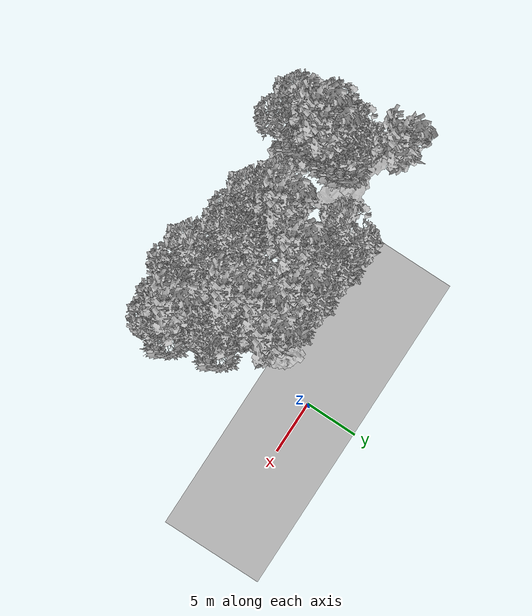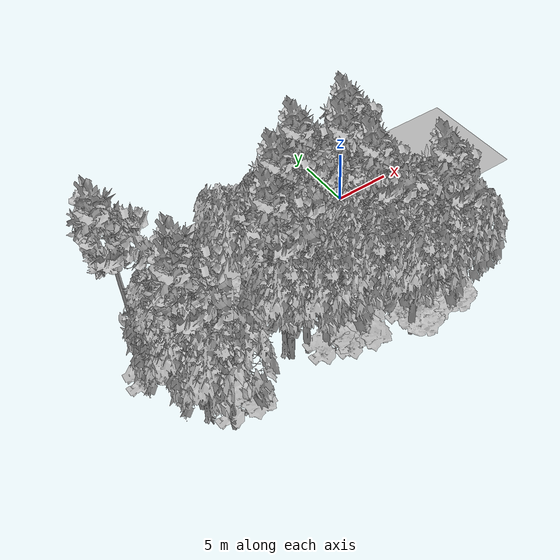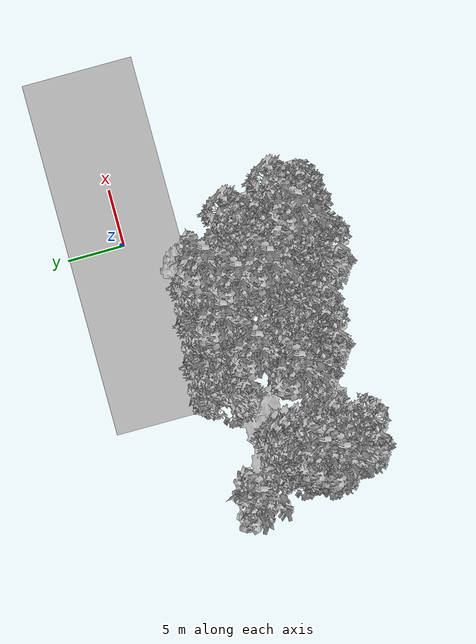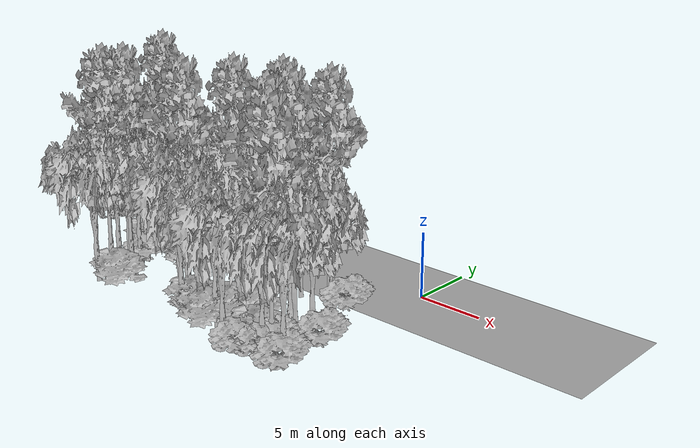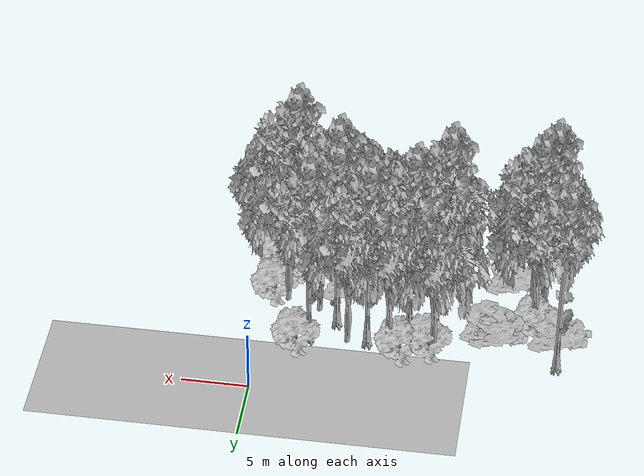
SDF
<sdf version="1.7">
 <world name="default">
  <model name="ground_plane">
   <static>1</static>
   <link name="link">
    <collision name="collision">
     <pose>-50 0 0 0 -0 0</pose>
     <geometry><plane><normal>0 0 1</normal><size>100 100</size></plane></geometry>
     <surface><contact><ode><min_depth>0.01</min_depth><max_vel>0</max_vel></ode></contact></surface>
    </collision>
    <visual name="grass">
     <cast_shadows>0</cast_shadows>
     <geometry>
      <mesh>
       <scale>0.5814285714285714 0.18142857142857144 0.1</scale>
       <uri>file://grass_plane/meshes/grass_plane.dae</uri>
      </mesh>
     </geometry>
    </visual>
   </link>
  </model>
  <model name="Tree 12">
   <static>1</static>
   <pose>-1.50159747943853 -9.879959348353642 0 1.57079 -0 0</pose>
   <link name="link">
    <collision name="collision">
     <geometry><mesh><scale>3.5 5 3.5</scale><uri>model://tree_2/meshes/tree_2.obj</uri></mesh></geometry>
    </collision>
    <visual name="visual">
     <geometry><mesh><scale>3.5 5 3.5</scale><uri>model://tree_2/meshes/tree_2.obj</uri></mesh></geometry>
    </visual>
   </link>
  </model>
  <model name="Tree 27">
   <static>1</static>
   <pose>-19.66256483486999 -14.122985390510822 0 1.57079 -0 0</pose>
   <link name="link">
    <collision name="collision">
     <geometry><mesh><scale>3.5 5 3.5</scale><uri>model://tree_2/meshes/tree_2.obj</uri></mesh></geometry>
    </collision>
    <visual name="visual">
     <geometry><mesh><scale>3.5 5 3.5</scale><uri>model://tree_2/meshes/tree_2.obj</uri></mesh></geometry>
    </visual>
   </link>
  </model>
  <model name="Tree 35">
   <static>1</static>
   <pose>-20.503865957009506 -12.225678853466139 0 1.57079 -0 0</pose>
   <link name="link">
    <collision name="collision">
     <geometry><mesh><scale>3.5 5 3.5</scale><uri>model://tree_9/meshes/tree_9.obj</uri></mesh></geometry>
    </collision>
    <visual name="visual">
     <geometry><mesh><scale>3.5 5 3.5</scale><uri>model://tree_9/meshes/tree_9.obj</uri></mesh></geometry>
    </visual>
   </link>
  </model>
  <model name="Tree 57">
   <static>1</static>
   <pose>-2.8117138104480617 -5.010645561518773 0 1.57079 -0 0</pose>
   <link name="link">
    <collision name="collision">
     <geometry><mesh><scale>4 2.5 4</scale><uri>model://tree_1/meshes/tree_1.obj</uri></mesh></geometry>
    </collision>
    <visual name="visual">
     <geometry><mesh><scale>4 2.5 4</scale><uri>model://tree_1/meshes/tree_1.obj</uri></mesh></geometry>
    </visual>
   </link>
  </model>
  <model name="Tree 61">
   <static>1</static>
   <pose>-12.566647180305935 -5.742913368934948 0 1.57079 -0 0</pose>
   <link name="link">
    <collision name="collision">
     <geometry><mesh><scale>4 2.5 4</scale><uri>model://tree_1/meshes/tree_1.obj</uri></mesh></geometry>
    </collision>
    <visual name="visual">
     <geometry><mesh><scale>4 2.5 4</scale><uri>model://tree_1/meshes/tree_1.obj</uri></mesh></geometry>
    </visual>
   </link>
  </model>
  <model name="Tree 69">
   <static>1</static>
   <pose>-3.4126143271416467 -13.39953610645943 0 1.57079 -0 0</pose>
   <link name="link">
    <collision name="collision">
     <geometry><mesh><scale>3 2 3</scale><uri>model://tree_3/meshes/tree_3.obj</uri></mesh></geometry>
    </collision>
    <visual name="visual">
     <geometry><mesh><scale>3 2 3</scale><uri>model://tree_3/meshes/tree_3.obj</uri></mesh></geometry>
    </visual>
   </link>
  </model>
  <model name="Tree 70">
   <static>1</static>
   <pose>-11.06358419430834 -13.08388687965585 0 1.57079 -0 0</pose>
   <link name="link">
    <collision name="collision">
     <geometry><mesh><scale>3.5 5 3.5</scale><uri>model://tree_2/meshes/tree_2.obj</uri></mesh></geometry>
    </collision>
    <visual name="visual">
     <geometry><mesh><scale>3.5 5 3.5</scale><uri>model://tree_2/meshes/tree_2.obj</uri></mesh></geometry>
    </visual>
   </link>
  </model>
  <model name="Tree 75">
   <static>1</static>
   <pose>-11.915114065406868 -11.828859717489891 0 1.57079 -0 0</pose>
   <link name="link">
    <collision name="collision">
     <geometry><mesh><scale>3.5 5 3.5</scale><uri>model://tree_2/meshes/tree_2.obj</uri></mesh></geometry>
    </collision>
    <visual name="visual">
     <geometry><mesh><scale>3.5 5 3.5</scale><uri>model://tree_2/meshes/tree_2.obj</uri></mesh></geometry>
    </visual>
   </link>
  </model>
  <model name="Tree 86">
   <static>1</static>
   <pose>-4.637871227763824 -14.968036942179307 0 1.57079 -0 0</pose>
   <link name="link">
    <collision name="collision">
     <geometry><mesh><scale>3.5 5 3.5</scale><uri>model://tree_2/meshes/tree_2.obj</uri></mesh></geometry>
    </collision>
    <visual name="visual">
     <geometry><mesh><scale>3.5 5 3.5</scale><uri>model://tree_2/meshes/tree_2.obj</uri></mesh></geometry>
    </visual>
   </link>
  </model>
  <model name="Tree 87">
   <static>1</static>
   <pose>-21.986639834345766 -7.7219411432305005 0 1.57079 -0 0</pose>
   <link name="link">
    <collision name="collision">
     <geometry><mesh><scale>3 2 3</scale><uri>model://tree_3/meshes/tree_3.obj</uri></mesh></geometry>
    </collision>
    <visual name="visual">
     <geometry><mesh><scale>3 2 3</scale><uri>model://tree_3/meshes/tree_3.obj</uri></mesh></geometry>
    </visual>
   </link>
  </model>
  <model name="Tree 94">
   <static>1</static>
   <pose>-16.89311117780248 -8.04204011389494 0 1.57079 -0 0</pose>
   <link name="link">
    <collision name="collision">
     <geometry><mesh><scale>3 2 3</scale><uri>model://tree_3/meshes/tree_3.obj</uri></mesh></geometry>
    </collision>
    <visual name="visual">
     <geometry><mesh><scale>3 2 3</scale><uri>model://tree_3/meshes/tree_3.obj</uri></mesh></geometry>
    </visual>
   </link>
  </model>
  <model name="Tree 95">
   <static>1</static>
   <pose>-1.9947394591807566 -13.122786531332514 0 1.57079 -0 0</pose>
   <link name="link">
    <collision name="collision">
     <geometry><mesh><scale>4 2.5 4</scale><uri>model://tree_1/meshes/tree_1.obj</uri></mesh></geometry>
    </collision>
    <visual name="visual">
     <geometry><mesh><scale>4 2.5 4</scale><uri>model://tree_1/meshes/tree_1.obj</uri></mesh></geometry>
    </visual>
   </link>
  </model>
  <model name="Tree 96">
   <static>1</static>
   <pose>-7.351783274770277 -13.20518879036336 0 1.57079 -0 0</pose>
   <link name="link">
    <collision name="collision">
     <geometry><mesh><scale>3.5 5 3.5</scale><uri>model://tree_2/meshes/tree_2.obj</uri></mesh></geometry>
    </collision>
    <visual name="visual">
     <geometry><mesh><scale>3.5 5 3.5</scale><uri>model://tree_2/meshes/tree_2.obj</uri></mesh></geometry>
    </visual>
   </link>
  </model>
  <model name="Tree 97">
   <static>1</static>
   <pose>-2.178149891349996 -13.957123581580287 0 1.57079 -0 0</pose>
   <link name="link">
    <collision name="collision">
     <geometry><mesh><scale>4 2.5 4</scale><uri>model://tree_1/meshes/tree_1.obj</uri></mesh></geometry>
    </collision>
    <visual name="visual">
     <geometry><mesh><scale>4 2.5 4</scale><uri>model://tree_1/meshes/tree_1.obj</uri></mesh></geometry>
    </visual>
   </link>
  </model>
  <model name="Tree 120">
   <static>1</static>
   <pose>-0.1393917935306206 -14.191559642324721 0 1.57079 -0 0</pose>
   <link name="link">
    <collision name="collision">
     <geometry><mesh><scale>4 2.5 4</scale><uri>model://tree_1/meshes/tree_1.obj</uri></mesh></geometry>
    </collision>
    <visual name="visual">
     <geometry><mesh><scale>4 2.5 4</scale><uri>model://tree_1/meshes/tree_1.obj</uri></mesh></geometry>
    </visual>
   </link>
  </model>
  <model name="Tree 127">
   <static>1</static>
   <pose>-18.29765632771013 -13.610339030215128 0 1.57079 -0 0</pose>
   <link name="link">
    <collision name="collision">
     <geometry><mesh><scale>3 2 3</scale><uri>model://tree_3/meshes/tree_3.obj</uri></mesh></geometry>
    </collision>
    <visual name="visual">
     <geometry><mesh><scale>3 2 3</scale><uri>model://tree_3/meshes/tree_3.obj</uri></mesh></geometry>
    </visual>
   </link>
  </model>
  <model name="Tree 134">
   <static>1</static>
   <pose>-6.0862142308994365 -11.12225132108448 0 1.57079 -0 0</pose>
   <link name="link">
    <collision name="collision">
     <geometry><mesh><scale>3 2 3</scale><uri>model://tree_3/meshes/tree_3.obj</uri></mesh></geometry>
    </collision>
    <visual name="visual">
     <geometry><mesh><scale>3 2 3</scale><uri>model://tree_3/meshes/tree_3.obj</uri></mesh></geometry>
    </visual>
   </link>
  </model>
  <model name="Tree 152">
   <static>1</static>
   <pose>-4.90606151258438 -10.536182815350084 0 1.57079 -0 0</pose>
   <link name="link">
    <collision name="collision">
     <geometry><mesh><scale>3.5 5 3.5</scale><uri>model://tree_9/meshes/tree_9.obj</uri></mesh></geometry>
    </collision>
    <visual name="visual">
     <geometry><mesh><scale>3.5 5 3.5</scale><uri>model://tree_9/meshes/tree_9.obj</uri></mesh></geometry>
    </visual>
   </link>
  </model>
  <model name="Tree 186">
   <static>1</static>
   <pose>-13.098190071849764 -11.580761951727256 0 1.57079 -0 0</pose>
   <link name="link">
    <collision name="collision">
     <geometry><mesh><scale>3.5 5 3.5</scale><uri>model://tree_2/meshes/tree_2.obj</uri></mesh></geometry>
    </collision>
    <visual name="visual">
     <geometry><mesh><scale>3.5 5 3.5</scale><uri>model://tree_2/meshes/tree_2.obj</uri></mesh></geometry>
    </visual>
   </link>
  </model>
  <model name="Tree 204">
   <static>1</static>
   <pose>-10.17088853305949 -13.045176247442093 0 1.57079 -0 0</pose>
   <link name="link">
    <collision name="collision">
     <geometry><mesh><scale>3 2 3</scale><uri>model://tree_3/meshes/tree_3.obj</uri></mesh></geometry>
    </collision>
    <visual name="visual">
     <geometry><mesh><scale>3 2 3</scale><uri>model://tree_3/meshes/tree_3.obj</uri></mesh></geometry>
    </visual>
   </link>
  </model>
  <model name="Tree 206">
   <static>1</static>
   <pose>-13.08047887840646 -10.777039910648089 0 1.57079 -0 0</pose>
   <link name="link">
    <collision name="collision">
     <geometry><mesh><scale>3.5 5 3.5</scale><uri>model://tree_9/meshes/tree_9.obj</uri></mesh></geometry>
    </collision>
    <visual name="visual">
     <geometry><mesh><scale>3.5 5 3.5</scale><uri>model://tree_9/meshes/tree_9.obj</uri></mesh></geometry>
    </visual>
   </link>
  </model>
  <model name="Tree 244">
   <static>1</static>
   <pose>-0.08105656148013907 -13.979215926077167 0 1.57079 -0 0</pose>
   <link name="link">
    <collision name="collision">
     <geometry><mesh><scale>3.5 5 3.5</scale><uri>model://tree_2/meshes/tree_2.obj</uri></mesh></geometry>
    </collision>
    <visual name="visual">
     <geometry><mesh><scale>3.5 5 3.5</scale><uri>model://tree_2/meshes/tree_2.obj</uri></mesh></geometry>
    </visual>
   </link>
  </model>
  <model name="Tree 279">
   <static>1</static>
   <pose>-9.619958603923543 -5.63423909653147 0 1.57079 -0 0</pose>
   <link name="link">
    <collision name="collision">
     <geometry><mesh><scale>3.5 5 3.5</scale><uri>model://tree_2/meshes/tree_2.obj</uri></mesh></geometry>
    </collision>
    <visual name="visual">
     <geometry><mesh><scale>3.5 5 3.5</scale><uri>model://tree_2/meshes/tree_2.obj</uri></mesh></geometry>
    </visual>
   </link>
  </model>
  <model name="Tree 283">
   <static>1</static>
   <pose>-5.984023032711747 -11.283458625506801 0 1.57079 -0 0</pose>
   <link name="link">
    <collision name="collision">
     <geometry><mesh><scale>3.5 5 3.5</scale><uri>model://tree_2/meshes/tree_2.obj</uri></mesh></geometry>
    </collision>
    <visual name="visual">
     <geometry><mesh><scale>3.5 5 3.5</scale><uri>model://tree_2/meshes/tree_2.obj</uri></mesh></geometry>
    </visual>
   </link>
  </model>
  <model name="Tree 294">
   <static>1</static>
   <pose>-1.739461138106421 -14.211430007460953 0 1.57079 -0 0</pose>
   <link name="link">
    <collision name="collision">
     <geometry><mesh><scale>3.5 5 3.5</scale><uri>model://tree_2/meshes/tree_2.obj</uri></mesh></geometry>
    </collision>
    <visual name="visual">
     <geometry><mesh><scale>3.5 5 3.5</scale><uri>model://tree_2/meshes/tree_2.obj</uri></mesh></geometry>
    </visual>
   </link>
  </model>
  <model name="Tree 301">
   <static>1</static>
   <pose>-8.309172600886157 -13.806670508051516 0 1.57079 -0 0</pose>
   <link name="link">
    <collision name="collision">
     <geometry><mesh><scale>3 2 3</scale><uri>model://tree_3/meshes/tree_3.obj</uri></mesh></geometry>
    </collision>
    <visual name="visual">
     <geometry><mesh><scale>3 2 3</scale><uri>model://tree_3/meshes/tree_3.obj</uri></mesh></geometry>
    </visual>
   </link>
  </model>
  <model name="Tree 305">
   <static>1</static>
   <pose>-4.008792925837149 -9.02853503323201 0 1.57079 -0 0</pose>
   <link name="link">
    <collision name="collision">
     <geometry><mesh><scale>3.5 5 3.5</scale><uri>model://tree_2/meshes/tree_2.obj</uri></mesh></geometry>
    </collision>
    <visual name="visual">
     <geometry><mesh><scale>3.5 5 3.5</scale><uri>model://tree_2/meshes/tree_2.obj</uri></mesh></geometry>
    </visual>
   </link>
  </model>
  <model name="Tree 331">
   <static>1</static>
   <pose>-20.08602750150642 -9.23020497079876 0 1.57079 -0 0</pose>
   <link name="link">
    <collision name="collision">
     <geometry><mesh><scale>3.5 5 3.5</scale><uri>model://tree_2/meshes/tree_2.obj</uri></mesh></geometry>
    </collision>
    <visual name="visual">
     <geometry><mesh><scale>3.5 5 3.5</scale><uri>model://tree_2/meshes/tree_2.obj</uri></mesh></geometry>
    </visual>
   </link>
  </model>
  <model name="Tree 343">
   <static>1</static>
   <pose>-22.036750614932238 -5.4020226238130675 0 1.57079 -0 0</pose>
   <link name="link">
    <collision name="collision">
     <geometry><mesh><scale>3.5 5 3.5</scale><uri>model://tree_9/meshes/tree_9.obj</uri></mesh></geometry>
    </collision>
    <visual name="visual">
     <geometry><mesh><scale>3.5 5 3.5</scale><uri>model://tree_9/meshes/tree_9.obj</uri></mesh></geometry>
    </visual>
   </link>
  </model>
  <model name="Tree 357">
   <static>1</static>
   <pose>-17.612206447340572 -7.515040399202465 0 1.57079 -0 0</pose>
   <link name="link">
    <collision name="collision">
     <geometry><mesh><scale>3 2 3</scale><uri>model://tree_3/meshes/tree_3.obj</uri></mesh></geometry>
    </collision>
    <visual name="visual">
     <geometry><mesh><scale>3 2 3</scale><uri>model://tree_3/meshes/tree_3.obj</uri></mesh></geometry>
    </visual>
   </link>
  </model>
  <model name="Tree 361">
   <static>1</static>
   <pose>-6.535815647415788 -5.890120144991712 0 1.57079 -0 0</pose>
   <link name="link">
    <collision name="collision">
     <geometry><mesh><scale>3.5 5 3.5</scale><uri>model://tree_2/meshes/tree_2.obj</uri></mesh></geometry>
    </collision>
    <visual name="visual">
     <geometry><mesh><scale>3.5 5 3.5</scale><uri>model://tree_2/meshes/tree_2.obj</uri></mesh></geometry>
    </visual>
   </link>
  </model>
  <model name="Tree 366">
   <static>1</static>
   <pose>-20.659146289398567 -11.419535726430805 0 1.57079 -0 0</pose>
   <link name="link">
    <collision name="collision">
     <geometry><mesh><scale>3.5 5 3.5</scale><uri>model://tree_2/meshes/tree_2.obj</uri></mesh></geometry>
    </collision>
    <visual name="visual">
     <geometry><mesh><scale>3.5 5 3.5</scale><uri>model://tree_2/meshes/tree_2.obj</uri></mesh></geometry>
    </visual>
   </link>
  </model>
  <model name="Tree 376">
   <static>1</static>
   <pose>-19.687865781149494 -10.950457309232185 0 1.57079 -0 0</pose>
   <link name="link">
    <collision name="collision">
     <geometry><mesh><scale>3.5 5 3.5</scale><uri>model://tree_9/meshes/tree_9.obj</uri></mesh></geometry>
    </collision>
    <visual name="visual">
     <geometry><mesh><scale>3.5 5 3.5</scale><uri>model://tree_9/meshes/tree_9.obj</uri></mesh></geometry>
    </visual>
   </link>
  </model>
  <model name="Tree 382">
   <static>1</static>
   <pose>-20.014869259194867 -10.881262462570625 0 1.57079 -0 0</pose>
   <link name="link">
    <collision name="collision">
     <geometry><mesh><scale>3.5 5 3.5</scale><uri>model://tree_2/meshes/tree_2.obj</uri></mesh></geometry>
    </collision>
    <visual name="visual">
     <geometry><mesh><scale>3.5 5 3.5</scale><uri>model://tree_2/meshes/tree_2.obj</uri></mesh></geometry>
    </visual>
   </link>
  </model>
  <model name="Tree 388">
   <static>1</static>
   <pose>-10.499889058205405 -5.131388602828611 0 1.57079 -0 0</pose>
   <link name="link">
    <collision name="collision">
     <geometry><mesh><scale>4 2.5 4</scale><uri>model://tree_1/meshes/tree_1.obj</uri></mesh></geometry>
    </collision>
    <visual name="visual">
     <geometry><mesh><scale>4 2.5 4</scale><uri>model://tree_1/meshes/tree_1.obj</uri></mesh></geometry>
    </visual>
   </link>
  </model>
  <model name="Tree 389">
   <static>1</static>
   <pose>-19.930471100020394 -9.979833784329573 0 1.57079 -0 0</pose>
   <link name="link">
    <collision name="collision">
     <geometry><mesh><scale>3.5 5 3.5</scale><uri>model://tree_2/meshes/tree_2.obj</uri></mesh></geometry>
    </collision>
    <visual name="visual">
     <geometry><mesh><scale>3.5 5 3.5</scale><uri>model://tree_2/meshes/tree_2.obj</uri></mesh></geometry>
    </visual>
   </link>
  </model>
  <model name="Tree 399">
   <static>1</static>
   <pose>-5.3812209796908235 -7.928114274753646 0 1.57079 -0 0</pose>
   <link name="link">
    <collision name="collision">
     <geometry><mesh><scale>3.5 5 3.5</scale><uri>model://tree_9/meshes/tree_9.obj</uri></mesh></geometry>
    </collision>
    <visual name="visual">
     <geometry><mesh><scale>3.5 5 3.5</scale><uri>model://tree_9/meshes/tree_9.obj</uri></mesh></geometry>
    </visual>
   </link>
  </model>
  <model name="Tree 412">
   <static>1</static>
   <pose>-0.4202767920473036 -10.27356572989154 0 1.57079 -0 0</pose>
   <link name="link">
    <collision name="collision">
     <geometry><mesh><scale>4 2.5 4</scale><uri>model://tree_1/meshes/tree_1.obj</uri></mesh></geometry>
    </collision>
    <visual name="visual">
     <geometry><mesh><scale>4 2.5 4</scale><uri>model://tree_1/meshes/tree_1.obj</uri></mesh></geometry>
    </visual>
   </link>
  </model>
  <model name="Tree 455">
   <static>1</static>
   <pose>-20.352826572987965 -9.02567800010258 0 1.57079 -0 0</pose>
   <link name="link">
    <collision name="collision">
     <geometry><mesh><scale>4 2.5 4</scale><uri>model://tree_1/meshes/tree_1.obj</uri></mesh></geometry>
    </collision>
    <visual name="visual">
     <geometry><mesh><scale>4 2.5 4</scale><uri>model://tree_1/meshes/tree_1.obj</uri></mesh></geometry>
    </visual>
   </link>
  </model>
  <model name="Tree 461">
   <static>1</static>
   <pose>-1.406584755463605 -13.662988790284428 0 1.57079 -0 0</pose>
   <link name="link">
    <collision name="collision">
     <geometry><mesh><scale>3.5 5 3.5</scale><uri>model://tree_9/meshes/tree_9.obj</uri></mesh></geometry>
    </collision>
    <visual name="visual">
     <geometry><mesh><scale>3.5 5 3.5</scale><uri>model://tree_9/meshes/tree_9.obj</uri></mesh></geometry>
    </visual>
   </link>
  </model>
  <model name="Tree 475">
   <static>1</static>
   <pose>-12.976823637166667 -5.224790457588552 0 1.57079 -0 0</pose>
   <link name="link">
    <collision name="collision">
     <geometry><mesh><scale>3.5 5 3.5</scale><uri>model://tree_2/meshes/tree_2.obj</uri></mesh></geometry>
    </collision>
    <visual name="visual">
     <geometry><mesh><scale>3.5 5 3.5</scale><uri>model://tree_2/meshes/tree_2.obj</uri></mesh></geometry>
    </visual>
   </link>
  </model>
  <model name="Tree 504">
   <static>1</static>
   <pose>-7.8938582288069625 -6.121130417150454 0 1.57079 -0 0</pose>
   <link name="link">
    <collision name="collision">
     <geometry><mesh><scale>3.5 5 3.5</scale><uri>model://tree_9/meshes/tree_9.obj</uri></mesh></geometry>
    </collision>
    <visual name="visual">
     <geometry><mesh><scale>3.5 5 3.5</scale><uri>model://tree_9/meshes/tree_9.obj</uri></mesh></geometry>
    </visual>
   </link>
  </model>
  <model name="Tree 509">
   <static>1</static>
   <pose>-3.6744388903830583 -14.48308413447946 0 1.57079 -0 0</pose>
   <link name="link">
    <collision name="collision">
     <geometry><mesh><scale>4 2.5 4</scale><uri>model://tree_1/meshes/tree_1.obj</uri></mesh></geometry>
    </collision>
    <visual name="visual">
     <geometry><mesh><scale>4 2.5 4</scale><uri>model://tree_1/meshes/tree_1.obj</uri></mesh></geometry>
    </visual>
   </link>
  </model>
  <model name="Tree 522">
   <static>1</static>
   <pose>-10.80611894071415 -8.090314604919438 0 1.57079 -0 0</pose>
   <link name="link">
    <collision name="collision">
     <geometry><mesh><scale>3.5 5 3.5</scale><uri>model://tree_9/meshes/tree_9.obj</uri></mesh></geometry>
    </collision>
    <visual name="visual">
     <geometry><mesh><scale>3.5 5 3.5</scale><uri>model://tree_9/meshes/tree_9.obj</uri></mesh></geometry>
    </visual>
   </link>
  </model>
  <model name="Tree 523">
   <static>1</static>
   <pose>-7.489645589635316 -12.01375038604704 0 1.57079 -0 0</pose>
   <link name="link">
    <collision name="collision">
     <geometry><mesh><scale>3 2 3</scale><uri>model://tree_3/meshes/tree_3.obj</uri></mesh></geometry>
    </collision>
    <visual name="visual">
     <geometry><mesh><scale>3 2 3</scale><uri>model://tree_3/meshes/tree_3.obj</uri></mesh></geometry>
    </visual>
   </link>
  </model>
  <model name="Tree 539">
   <static>1</static>
   <pose>-3.557978721829933 -5.904843115437771 0 1.57079 -0 0</pose>
   <link name="link">
    <collision name="collision">
     <geometry><mesh><scale>3.5 5 3.5</scale><uri>model://tree_9/meshes/tree_9.obj</uri></mesh></geometry>
    </collision>
    <visual name="visual">
     <geometry><mesh><scale>3.5 5 3.5</scale><uri>model://tree_9/meshes/tree_9.obj</uri></mesh></geometry>
    </visual>
   </link>
  </model>
 </world>
</sdf>
